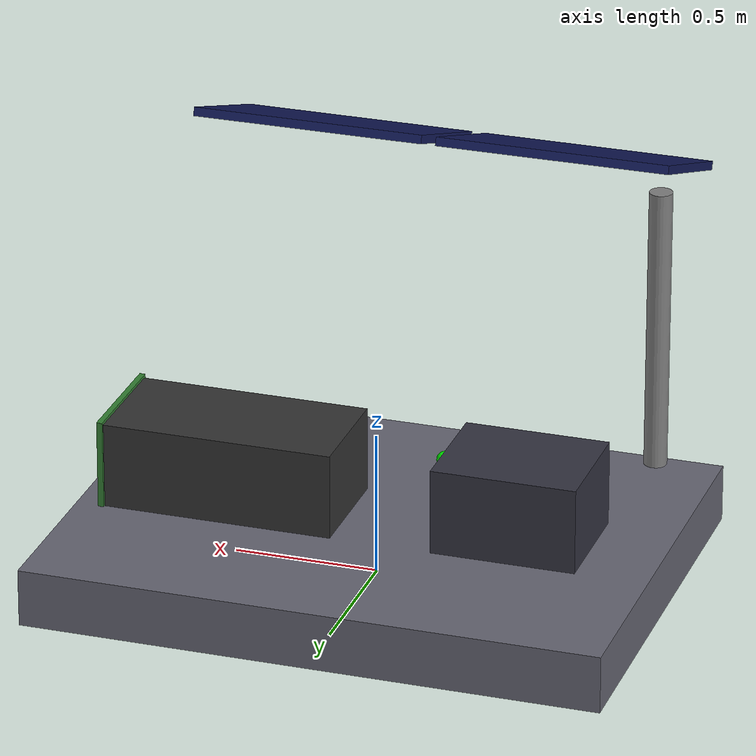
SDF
<?xml version="1.0" ?>
<sdf version="1.6">
  <model name="charging_station">
    <static>true</static>

    <!-- Base platform -->
    <link name="base">
      <pose>0 0 0.1 0 0 0</pose>
      <collision name="base_col">
        <geometry><box><size>2.0 1.5 0.2</size></box></geometry>
      </collision>
      <visual name="base_vis">
        <geometry><box><size>2.0 1.5 0.2</size></box></geometry>
        <material>
          <ambient>0.3 0.3 0.35 1</ambient>
          <diffuse>0.4 0.4 0.45 1</diffuse>
        </material>
      </visual>
    </link>

    <!-- Battery bay housing -->
    <link name="battery_bay">
      <pose>0.5 0 0.35 0 0 0</pose>
      <collision name="bay_col">
        <geometry><box><size>0.8 0.4 0.3</size></box></geometry>
      </collision>
      <visual name="bay_vis">
        <geometry><box><size>0.8 0.4 0.3</size></box></geometry>
        <material>
          <ambient>0.15 0.15 0.15 1</ambient>
          <diffuse>0.2 0.2 0.2 1</diffuse>
        </material>
      </visual>
      <!-- Bay door (visual indicator - open) -->
      <visual name="bay_door">
        <pose>0.41 0 0 0 0 0</pose>
        <geometry><box><size>0.02 0.42 0.32</size></box></geometry>
        <material><ambient>0.2 0.5 0.2 1</ambient></material>
      </visual>
    </link>

    <!-- Control box -->
    <link name="control_box">
      <pose>-0.5 0 0.35 0 0 0</pose>
      <collision name="ctrl_col">
        <geometry><box><size>0.5 0.4 0.3</size></box></geometry>
      </collision>
      <visual name="ctrl_vis">
        <geometry><box><size>0.5 0.4 0.3</size></box></geometry>
        <material><ambient>0.2 0.2 0.25 1</ambient></material>
      </visual>
      <!-- Status LED (green = ready) -->
      <visual name="status_led">
        <pose>0.26 0 0.1 0 0 0</pose>
        <geometry><sphere><radius>0.03</radius></sphere></geometry>
        <material>
          <ambient>0 1 0 1</ambient>
          <diffuse>0 1 0 1</diffuse>
          <emissive>0 0.8 0 1</emissive>
        </material>
      </visual>
    </link>

    <!-- Solar panel support mast -->
    <link name="mast">
      <pose>-0.8 -0.6 0.75 0 0 0</pose>
      <collision name="mast_col">
        <geometry><cylinder><radius>0.04</radius><length>1.0</length></cylinder></geometry>
      </collision>
      <visual name="mast_vis">
        <geometry><cylinder><radius>0.04</radius><length>1.0</length></cylinder></geometry>
        <material><ambient>0.5 0.5 0.5 1</ambient></material>
      </visual>
    </link>

    <!-- Solar panel array (2 panels tilted 20° south) -->
    <link name="solar_panel_1">
      <pose>-0.5 -0.6 1.35 0.349 0 0</pose>
      <collision name="panel1_col">
        <geometry><box><size>0.8 0.6 0.03</size></box></geometry>
      </collision>
      <visual name="panel1_vis">
        <geometry><box><size>0.8 0.6 0.03</size></box></geometry>
        <material>
          <ambient>0.05 0.08 0.25 1</ambient>
          <diffuse>0.07 0.1 0.35 1</diffuse>
          <specular>0.3 0.3 0.4 1</specular>
        </material>
      </visual>
    </link>

    <link name="solar_panel_2">
      <pose>0.35 -0.6 1.35 0.349 0 0</pose>
      <collision name="panel2_col">
        <geometry><box><size>0.8 0.6 0.03</size></box></geometry>
      </collision>
      <visual name="panel2_vis">
        <geometry><box><size>0.8 0.6 0.03</size></box></geometry>
        <material>
          <ambient>0.05 0.08 0.25 1</ambient>
          <diffuse>0.07 0.1 0.35 1</diffuse>
          <specular>0.3 0.3 0.4 1</specular>
        </material>
      </visual>
    </link>

  </model>
</sdf>
